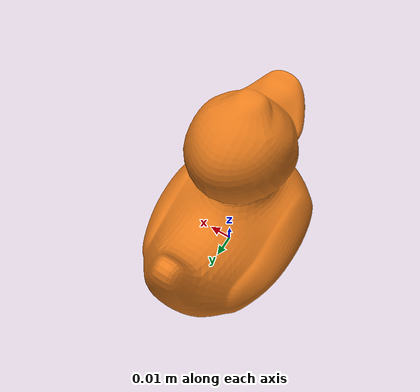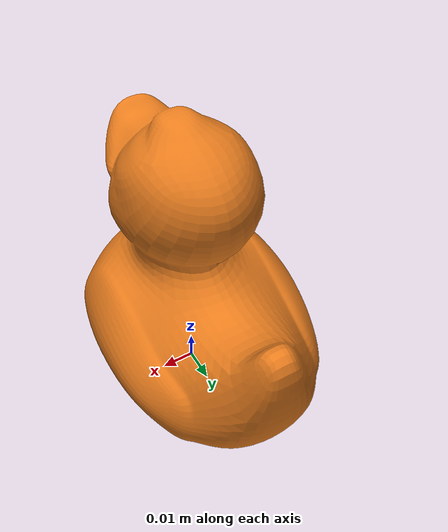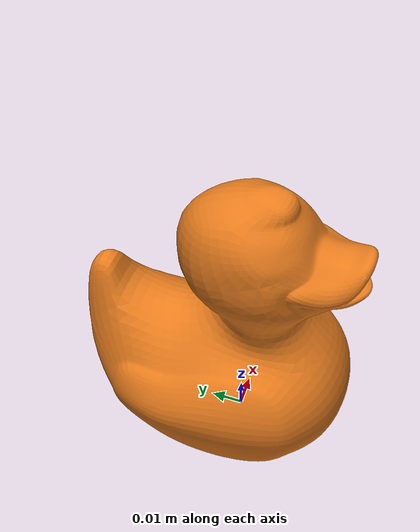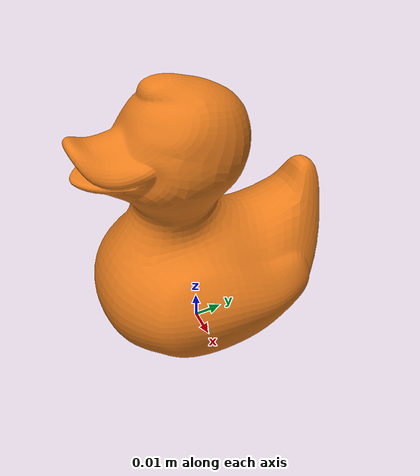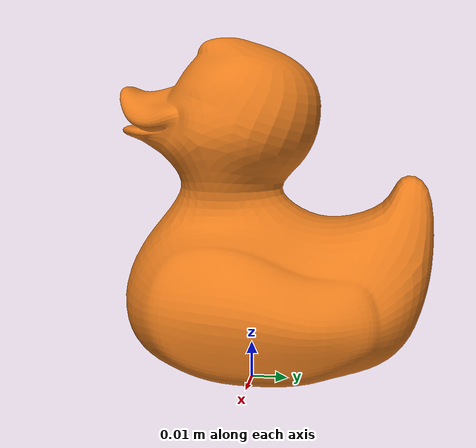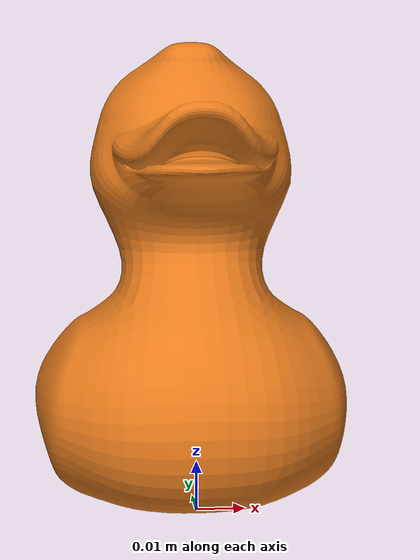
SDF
<?xml version="1.0" ?>
<sdf version="1.5">
	<model name="Rubber Duck">
		<link name="Obj_2">
			<pose>0 0 0.01 1.57 0 0</pose>
			<inertial>
				<mass>29.855024337768555</mass>
				<pose>-0.001582212746143341 0.03871428221464157 -0.006635349243879318 0.003324250690639019 -0.003817099379375577 0.00625542551279068</pose>
				<inertia>
					<ixx>0.06012697982788086</ixx>
					<ixy>0.0</ixy>
					<ixz>0.0</ixz>
					<iyy>0.04362722396850586</iyy>
					<iyz>0.0</iyz>
					<izz>0.046967262268066406</izz>
				</inertia>
			</inertial>
			<collision name="COL_Obj_2_RubberDuck_Coll">
				<pose>-0.001304767094552517 -0.006235823035240173 -0.005667734891176224 0.003324250690639019 -0.003817099379375577 0.00625542551279068</pose>
				<geometry>
					<mesh>
						<uri>model://rubberduck/meshes/collisions/COL_Obj_2_RubberDuck_Coll.dae</uri>
						<scale>0.02500000409781933 0.02500000223517418 0.02500000037252903</scale>
					</mesh>
				</geometry>
			</collision>
			<visual name="VIS_Obj_2_RubberDuck">
				<pose>-0.001304767094552517 -0.006235823035240173 -0.005667734891176224 0.003324250690639019 -0.003817099379375577 0.00625542551279068</pose>
				<geometry>
					<mesh>
						<uri>model://rubberduck/meshes/visual/VIS_Obj_2_RubberDuck.dae</uri>
						<scale>0.02500000409781933 0.02500000223517418 0.02500000037252903</scale>
					</mesh>
				</geometry>
			</visual>
		</link>
	</model>
</sdf>
